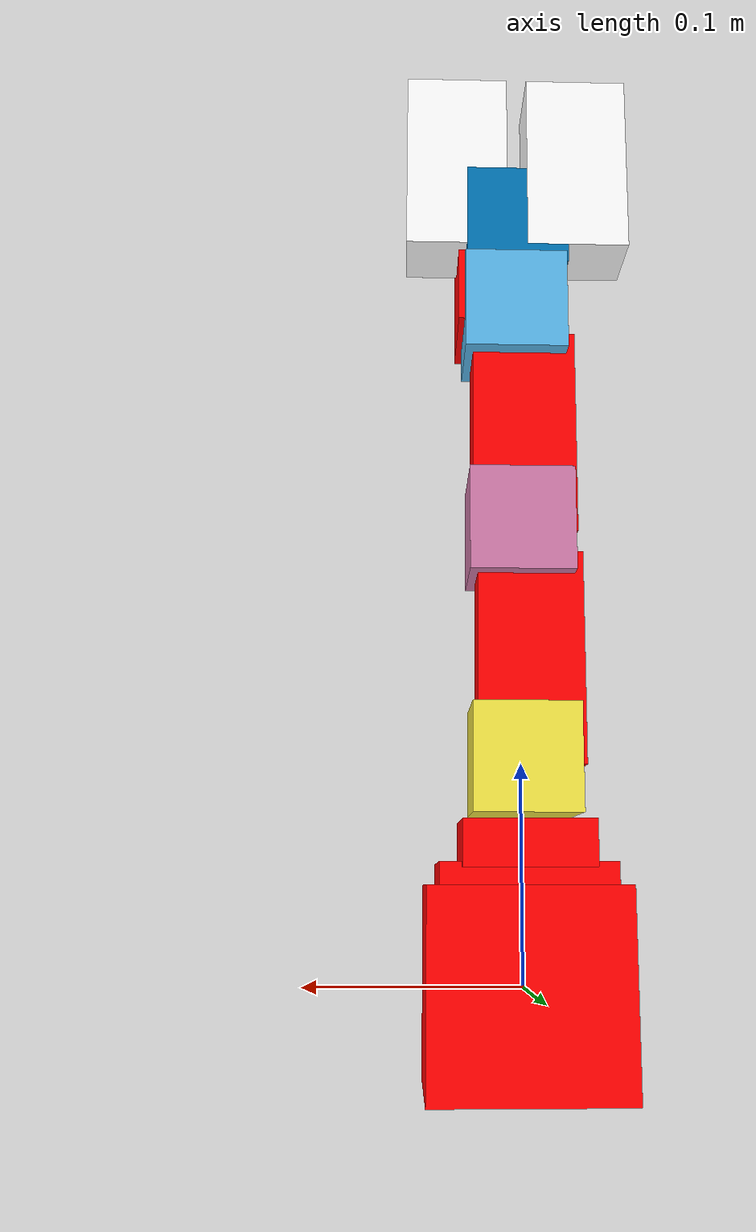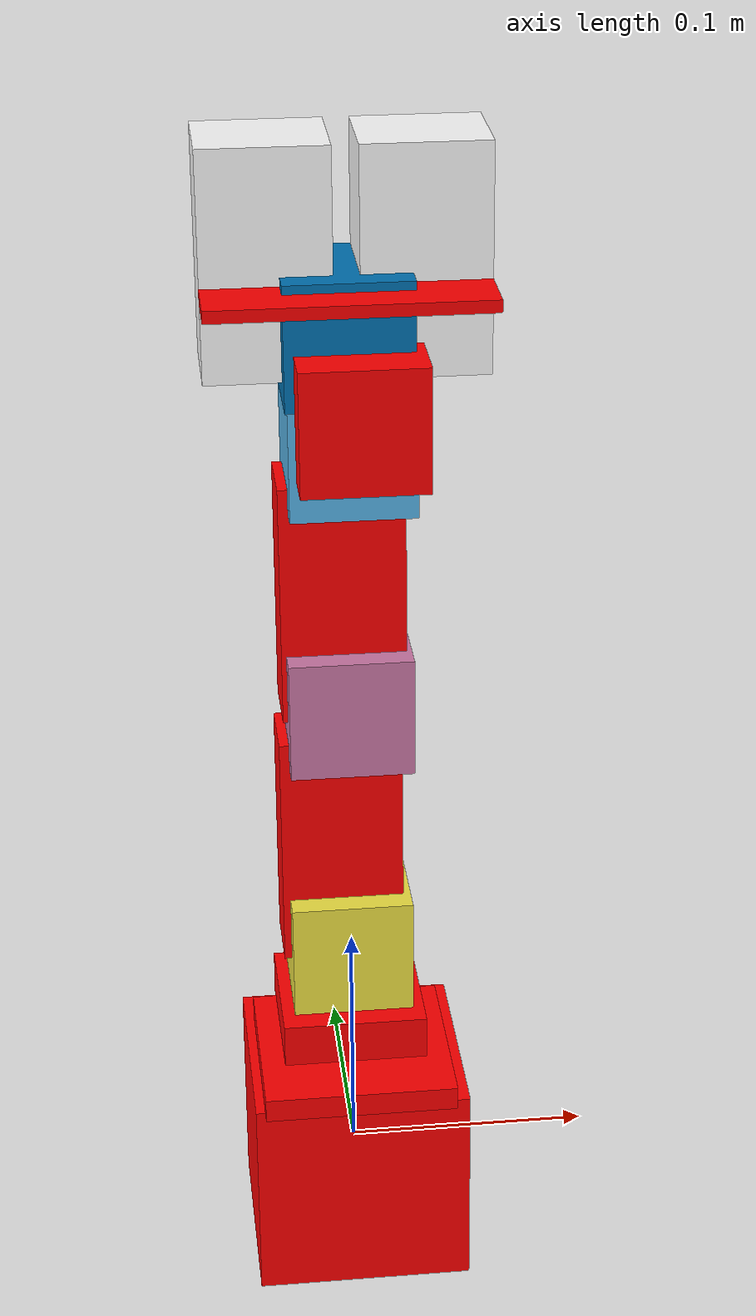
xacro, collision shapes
<?xml version="1.0"?>

<robot xmlns:xacro="http://www.ros.org/wiki/xacro" name="arm">

 <material name="red">
    <color rgba="1 0 0 1"/>
  </material>

  <link name="base_link">
    <visual>
      <geometry>
        <mesh filename="file://$(find arm_description)/meshes/base_link.stl" scale="0.001 0.001 0.001"/>
      </geometry>
      <origin rpy="0 0 0" xyz="0 0 0"/>
      <material name="red"/>
    </visual>
    <collision>
      <geometry>
     <box size="0.09 0.09 0.09"/>
      </geometry>
      <origin rpy="0 0 0" xyz="0 0 0"/>
    </collision>
    <inertial>
      <mass value="0.1"/>
      <inertia ixx="1.06682889e+08" ixy="0.0" ixz="0.0" iyy="9.92165844e+07" iyz="0.0" izz="1.26939175e+08"/>
    </inertial>
  </link>

  <link name="base_turn">
    <visual>
      <geometry>
        <mesh filename="file://$(find arm_description)/meshes/base_turn.stl" scale="0.001 0.001 0.001"/>
      </geometry>
      <origin rpy="0 0 0" xyz="0 0 0"/>
      <material name="red"/>
    </visual>
    <collision>
      <geometry>
          <box size="0.08 0.08 0.01"/>
        </geometry>
      <origin rpy="0 0 0" xyz="0 0 0"/>
    </collision>
    <inertial>
      <mass value="0.1"/>
      <inertia ixx="1.35223008e+07" ixy="0.0" ixz="0.0" iyy="8.13814925e+06" iyz="0.0" izz="2.14903814e+07"/>
    </inertial>
  </link>

  <link name="base_turn_rot">
    <visual>
      <geometry>
        <mesh filename="file://$(find arm_description)/meshes/base_turn_table_rot.stl" scale="0.001 0.001 0.001"/>
      </geometry>
      <material name="red"/>
    </visual>
    <collision>
      <geometry>
          <box size="0.06 0.06 0.021"/>
        </geometry>
      <origin rpy="0 0 0" xyz="0 0 0"/>
    </collision>

    <inertial>
      <mass value="0.1"/>
      <inertia ixx="0.001" ixy="0.0" ixz="0.0" iyy="0.001" iyz="0.0" izz="0.001"/>
    </inertial>
  </link>

  <link name="dyn2">
    <visual>
      <geometry>
        <mesh filename="file://$(find arm_description)/meshes/dyn.stl" scale="0.01 0.01 0.01"/>
      </geometry>

      <origin rpy="0 0 0" xyz="0 0 0"/>
    </visual>
    <collision>
      <geometry>
          <box size="0.05 0.05 0.05"/>
        </geometry>
      <origin rpy="0 0 0" xyz="0 0 0"/>
    </collision>
     <inertial>
      <mass value="0.1"/>
      <inertia ixx="6.90013881e-05" ixy="0.0" ixz="0.0" iyy="1.24554875e-04" iyz="0.0" izz="1.04295793e-04"/>
    </inertial>
  </link>

  <link name="dyn2_r">

  </link>

  <link name="f4">
    <visual>
      <geometry>
        <mesh filename="file://$(find arm_description)/meshes/f4_n_f3.stl" scale="0.001 0.001 0.001"/>
      </geometry>
      <origin rpy="0 0 0" xyz="0 0 0"/>
      <material name="red"/>
    </visual>
    <collision>
      <geometry>
          <box size="0.05 0.1 0.03"/>
        </geometry>
      <origin rpy="0 0 0" xyz="0 0 0"/>
    </collision>
     <inertial>
      <mass value="0.1"/>
      <inertia ixx="6.90013881e-05" ixy="0.0" ixz="0.0" iyy="1.24554875e-04" iyz="0.0" izz="1.04295793e-04"/>
    </inertial>
  </link>

  <link name="dyn3">
    <visual>
      <geometry>
        <mesh filename="file://$(find arm_description)/meshes/dyn.stl" scale="0.01 0.01 0.01"/>
      </geometry>
      <origin rpy="0 0 0" xyz="0 0 0"/>
    </visual>
    <collision>
      <geometry>
          <box size="0.05 0.05 0.05"/>
        </geometry>
      <origin rpy="0 0 0" xyz="0 0 0"/>
    </collision>
     <inertial>
      <mass value="0.1"/>
      <inertia ixx="6.90013881e-05" ixy="0.0" ixz="0.0" iyy="1.24554875e-04" iyz="0.0" izz="1.04295793e-04"/>
    </inertial>
  </link>

 <link name="dyn3_r">

  </link>

  <link name="f5">
    <visual>
      <geometry>
        <mesh filename="file://$(find arm_description)/meshes/f4_n_f3.stl" scale="0.001 0.001 0.001"/>
      </geometry>
      <origin rpy="0 0 0" xyz="0 0 0"/>
      <material name="red"/>
    </visual>
    <collision>
      <geometry>
          <box size="0.05 0.1 0.03"/>
        </geometry>
      <origin rpy="0 0 0" xyz="0 0 0"/>
    </collision>

    <inertial>
      <mass value="0.1"/>
  <inertia ixx="0.001" ixy="0.0" ixz="0.0" iyy="0.001" iyz="0.0" izz="0.001"/>    </inertial>
  </link>

  <link name="dyn4">
    <visual>
      <geometry>
        <mesh filename="file://$(find arm_description)/meshes/dyn.stl" scale="0.01 0.01 0.01"/>
      </geometry>

      <origin rpy="0 0 0" xyz="0 0 0"/>
    </visual>
    <collision>
      <geometry>
          <box size="0.05 0.05 0.05"/>
        </geometry>
      <origin rpy="0 0 0" xyz="0 0 0"/>
    </collision>

    <inertial>
      <mass value="0.1"/>
      <inertia ixx="6.90013881e-05" ixy="0.0" ixz="0.0" iyy="1.24554875e-04" iyz="0.0" izz="1.04295793e-04"/>
    </inertial>
  </link>

  <link name="dyn4_r">

  </link>

  <link name="wrist">
    <visual>
      <geometry>
        <mesh filename="file://$(find arm_description)/meshes/wrist.stl" scale="0.001 0.001 0.001"/>
      </geometry>
      <origin rpy="0 0 0" xyz="0 0 0"/>
      <material name="red"/>
    </visual>
    <collision>
      <geometry>
            <box size="0.05 0.06 0.05"/>
      </geometry>
      <origin rpy="0 0 0" xyz="0 0 0"/>
    </collision>

     <inertial>
      <mass value="0.1"/>
      <inertia ixx="6.90013881e-05" ixy="0.0" ixz="0.0" iyy="1.24554875e-04" iyz="0.0" izz="1.04295793e-04"/>
    </inertial>
  </link>

    <link name="dyn5">
    <visual>
      <geometry>
        <mesh filename="file://$(find arm_description)/meshes/dyn.stl" scale="0.01 0.01 0.01"/>
      </geometry>
      <origin rpy="0 0 0" xyz="0 0 0"/>
    </visual>
    <collision>
      <geometry>
	          <box size="0.05 0.05 0.05"/>
        </geometry>
      <origin rpy="0 0 0" xyz="0 0 0"/>
    </collision>

    <inertial>
      <mass value="0.1"/>
      <inertia ixx="6.90013881e-05" ixy="0.0" ixz="0.0" iyy="1.24554875e-04" iyz="0.0" izz="1.04295793e-04"/>
    </inertial>
  </link>

  <link name="dyn5_r">

  </link>

  <link name="crawer_base">
    <visual>
      <geometry>
        <mesh filename="file://$(find arm_description)/meshes/the_crawer_base.stl" scale="0.001 0.001 0.001"/>
      </geometry>
      <origin rpy="0 0 0" xyz="0 0 0"/>
      <material name="red"/>
    </visual>
    <collision>
      <geometry>
          <box size="0.11 0.05 0.005"/>
        </geometry>
      <origin rpy="0 0 0" xyz="0 0 0"/>
    </collision>

    <inertial>
      <mass value="0.1"/>
      <inertia ixx="6.90013881e-05" ixy="0.0" ixz="0.0" iyy="1.24554875e-04" iyz="0.0" izz="1.04295793e-04"/>
    </inertial>
  </link>

  <link name="crawer_left">
    <visual>
      <geometry>
        <mesh filename="file://$(find arm_description)/meshes/the_crawer.stl" scale="0.001 0.001 0.001"/>
      </geometry>
      <origin rpy="0 0 0" xyz="0 0 0"/>
      <material name="white">
        <color rgba="1 1 1 1"/>
      </material>
    </visual>
    <collision>
      <geometry>
          <box size="0.09 0.04 0.05"/>
        </geometry>
      <origin rpy="0 0 0" xyz="0 0 0"/>
    </collision>

    <inertial>
      <mass value="0.1"/>
      <inertia ixx="6.90013881e-05" ixy="0.0" ixz="0.0" iyy="1.24554875e-04" iyz="0.0" izz="1.04295793e-04"/>
    </inertial>
  </link>

  <link name="crawer_right">
    <visual>
      <geometry>
        <mesh filename="file://$(find arm_description)/meshes/the_crawer.stl" scale="0.001 0.001 0.001"/>
      </geometry>
      <origin rpy="0 0 0" xyz="0 0 0"/>
      <material name="white">
        <color rgba="1 1 1 1"/>
      </material>
    </visual>
    <collision>
      <geometry>
          <box size="0.09 0.04 0.05"/>
        </geometry>
      <origin rpy="0 0 0" xyz="0 0 0"/>
    </collision>

    <inertial>
      <mass value="0.1"/>
      <inertia ixx="6.90013881e-05" ixy="0.0" ixz="0.0" iyy="1.24554875e-04" iyz="0.0" izz="1.04295793e-04"/>
    </inertial>
  </link>

  <joint name="base_1_2" type="fixed">
    <parent link="base_link"/>
    <child link="base_turn"/>
    <origin xyz="-0.0011 -0.011 0.05"/>
  </joint>

  <joint name="j0" type="revolute">
    <parent link="base_turn"/>
    <child link="base_turn_rot"/>
    <origin xyz="-0.0 0.0155 0.013" rpy = "0 0 -1.57"/>
    <axis xyz="0 0 1" />
    <limit effort="300" velocity="0.5" lower="-2.57" upper="2.57"/>
  </joint>

  <joint name="base_turn_rot_dyn2" type="fixed">
    <parent link="base_turn_rot"/>
    <child link="dyn2"/>
    <origin xyz="0 0 0.0385" rpy="0 1.57 1.57 "/>
  </joint>

  <joint name="j1" type="revolute">
    <parent link="dyn2"/>
    <child link="dyn2_r"/>
    <origin xyz="0 0 0.0" rpy="0 0 0"/>
    <axis xyz="0 0 1" />
    <limit effort="300" velocity="0.5" lower="-3.14" upper="3.14"/>
  </joint>

  <joint name="dyn2_f4" type="fixed">
    <parent link="dyn2_r"/>
    <child link="f4"/>
    <origin xyz="-0.047 0.0 -0.003" rpy="0 1.57 1.57"/>
  </joint>

  <joint name="d4_dyn3" type="fixed">
    <parent link="f4"/>
    <child link="dyn3"/>
    <origin xyz="-0.004 0.0645 0 " rpy="-1.57 3.14 1.57"/>
  </joint>

   <joint name="j2" type="revolute">
    <parent link="dyn3"/>
    <child link="dyn3_r"/>
    <origin xyz="0 0 0.0" rpy="0 0 0"/>
    <axis xyz="0 0 1" />
    <limit effort="300" velocity="0.5" lower="-3.14" upper="3.14"/>
  </joint>

  <joint name="dyn3_f5" type="fixed">
    <parent link="dyn3_r"/>
    <child link="f5"/>
    <origin xyz="-0.046 -0.0 -0.002" rpy="1.57 1.57 3.1415 "/>
  </joint>

  <joint name="f5_dyn4" type="fixed">
    <parent link="f5"/>
    <child link="dyn4"/>
    <origin xyz="-0.004 0.065 -0.0" rpy="-1.57 3.1415 1.57 "/>
  </joint>

  <joint name="j3" type="revolute">
    <parent link="dyn4"/>
    <child link="dyn4_r"/>
    <origin xyz="0 0 0.0" rpy="0 0 0"/>
    <axis xyz="0 0 1" />
    <limit effort="300" velocity="0.5" lower="-3.14" upper="3.14"/>
  </joint>

  <joint name="f5_wrist" type="fixed">
    <parent link="dyn4_r"/>
    <child link="wrist"/>
    <origin xyz="-0.017 -0.013 0.003" rpy="1.57 1.57 -1.57"/>
  </joint>

  <joint name="wrist_dyn5" type="fixed">
    <parent link="wrist"/>
    <child link="dyn5"/>
    <origin xyz="0.0038 -0.013 0.0275" rpy="0 0 1.57"/>
  </joint>

  <joint name="dyn5_dyn5_r" type="fixed">
    <parent link="dyn5"/>
    <child link="dyn5_r"/>
    <origin xyz="0 0 0.0" rpy="0 0 0"/>
    <axis xyz="0 0 1" />
    <limit effort="300" velocity="0.5" lower="-3.14" upper="3.14"/>
  </joint>

  <joint name="wrist_rotate_dyn5" type="fixed">
    <parent link="dyn5_r"/>
    <child link="crawer_base"/>
    <origin xyz="0.015 0 0.019" rpy="0 0 1.57"/>
  </joint>

  <joint name="crawer_base_crawer_left" type="fixed">
    <parent link="crawer_base"/>
    <child link="crawer_left"/>
    <origin xyz="-0.03 0.02 0.01" rpy="0 -1.57 0"/>
  </joint>

  <joint name="crawer_base_crawer_right" type="fixed">
    <parent link="crawer_base"/>
    <child link="crawer_right"/>
    <origin xyz="0.03 0.02 0.01" rpy="3.1415 -1.57 0"/>
  </joint>

  <xacro:include filename="$(find arm_description)/urdf/arm_hardware_interface.xacro"/>
  <xacro:include filename="$(find arm_gazebo)/urdf/arm_camera.xacro"/>
  <xacro:arm_camera link="camera_link" />
  <xacro:include filename="$(find arm_description)/urdf/camera.xacro"/>

  <gazebo>
    <plugin filename="ign_ros2_control-system" name="ign_ros2_control::IgnitionROS2ControlPlugin">
    <parameters>$(find arm_control)/config/arm_control.yaml</parameters>
      <controller_manager_prefix_node_name>controller_manager</controller_manager_prefix_node_name>
    </plugin>
  </gazebo>

  <xacro:arg name="joint_j0_pos" default="0.0"/>
  <xacro:arg name="joint_j1_pos" default="0.0"/>
  <xacro:arg name="joint_j2_pos" default="1.0"/>
  <xacro:arg name="joint_j3_pos" default="1.0"/>

  <ros2_control name="HardwareInterface_Ignition" type="system">
    <hardware>
      <plugin>ign_ros2_control/IgnitionSystem</plugin>
    </hardware>
    <xacro:PositionJointInterface name="j0" initial_pos="$(arg joint_j0_pos)"/>
    <xacro:PositionJointInterface name="j1" initial_pos="$(arg joint_j1_pos)"/>
    <xacro:PositionJointInterface name="j2" initial_pos="$(arg joint_j2_pos)"/>
    <xacro:PositionJointInterface name="j3" initial_pos="$(arg joint_j3_pos)"/>
  </ros2_control>

</robot>

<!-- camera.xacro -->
<robot xmlns:xacro="http://www.ros.org/wiki/xacro" name="camera">

  <link name="camera_link">
      <visual>
          <geometry>
              <box size="0.0000010 0.00000003 0.00000003"/>
          </geometry>
          <material name="red"/>
      </visual>
  </link>
  <joint name="camera_joint" type="fixed">
      <parent link="base_link"/>
      <child link="camera_link"/>
      <origin xyz="0.0 0 0.0" rpy="0.0 0.0 -1.57"/>
  </joint>

</robot>
